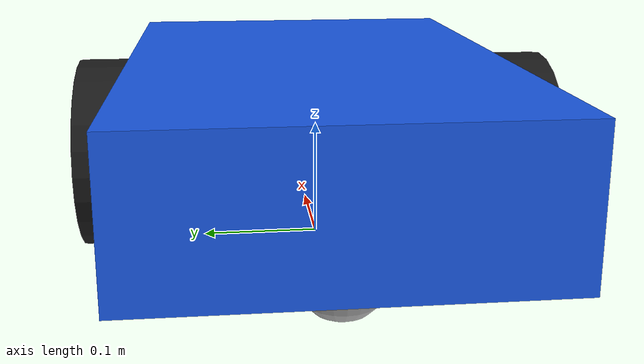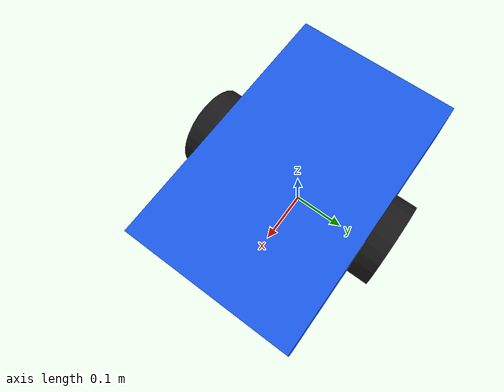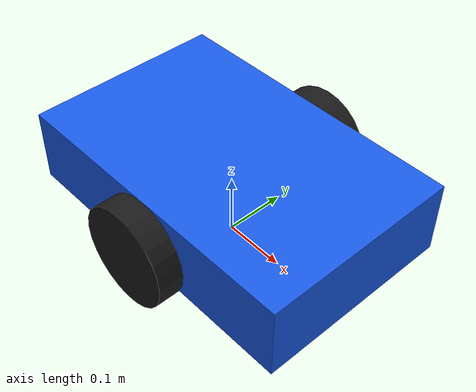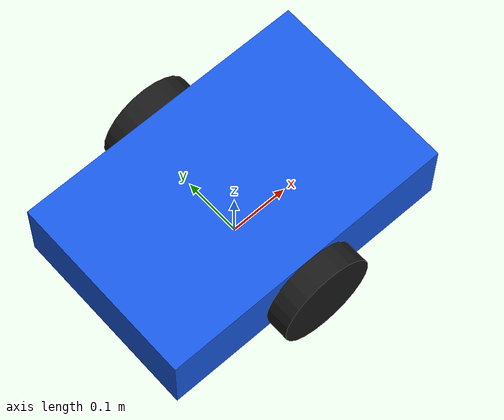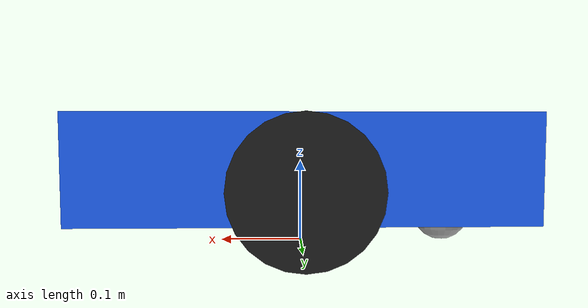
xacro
<?xml version="1.0"?>
<robot name="simple_diff_drive" xmlns:xacro="http://www.ros.org/wiki/xacro">
  <!--
    This is a small teaching model:
    - base_link is the main robot body
    - left_wheel and right_wheel are continuous wheel joints
    - caster_wheel is a small passive support wheel
  -->

  <xacro:property name="base_length" value="0.50"/>
  <xacro:property name="base_width" value="0.32"/>
  <xacro:property name="base_height" value="0.12"/>
  <xacro:property name="wheel_radius" value="0.08"/>
  <xacro:property name="wheel_width" value="0.04"/>
  <xacro:property name="caster_radius" value="0.035"/>

  <material name="blue">
    <color rgba="0.1 0.35 0.9 1.0"/>
  </material>

  <material name="dark_gray">
    <color rgba="0.1 0.1 0.1 1.0"/>
  </material>

  <material name="light_gray">
    <color rgba="0.7 0.7 0.7 1.0"/>
  </material>

  <link name="base_link">
    <visual>
      <origin xyz="0 0 0.10" rpy="0 0 0"/>
      <geometry>
        <box size="${base_length} ${base_width} ${base_height}"/>
      </geometry>
      <material name="blue"/>
    </visual>
    <collision>
      <origin xyz="0 0 0.10" rpy="0 0 0"/>
      <geometry>
        <box size="${base_length} ${base_width} ${base_height}"/>
      </geometry>
    </collision>
    <inertial>
      <origin xyz="0 0 0.10" rpy="0 0 0"/>
      <mass value="2.0"/>
      <inertia ixx="0.025" ixy="0.0" ixz="0.0" iyy="0.045" iyz="0.0" izz="0.060"/>
    </inertial>
  </link>

  <link name="left_wheel">
    <visual>
      <origin xyz="0 0 0" rpy="1.5708 0 0"/>
      <geometry>
        <cylinder radius="${wheel_radius}" length="${wheel_width}"/>
      </geometry>
      <material name="dark_gray"/>
    </visual>
    <collision>
      <origin xyz="0 0 0" rpy="1.5708 0 0"/>
      <geometry>
        <cylinder radius="${wheel_radius}" length="${wheel_width}"/>
      </geometry>
    </collision>
    <inertial>
      <mass value="0.2"/>
      <inertia ixx="0.0008" ixy="0.0" ixz="0.0" iyy="0.0008" iyz="0.0" izz="0.0005"/>
    </inertial>
  </link>

  <link name="right_wheel">
    <visual>
      <origin xyz="0 0 0" rpy="1.5708 0 0"/>
      <geometry>
        <cylinder radius="${wheel_radius}" length="${wheel_width}"/>
      </geometry>
      <material name="dark_gray"/>
    </visual>
    <collision>
      <origin xyz="0 0 0" rpy="1.5708 0 0"/>
      <geometry>
        <cylinder radius="${wheel_radius}" length="${wheel_width}"/>
      </geometry>
    </collision>
    <inertial>
      <mass value="0.2"/>
      <inertia ixx="0.0008" ixy="0.0" ixz="0.0" iyy="0.0008" iyz="0.0" izz="0.0005"/>
    </inertial>
  </link>

  <link name="caster_wheel">
    <visual>
      <origin xyz="0 0 0" rpy="0 0 0"/>
      <geometry>
        <sphere radius="${caster_radius}"/>
      </geometry>
      <material name="light_gray"/>
    </visual>
    <collision>
      <origin xyz="0 0 0" rpy="0 0 0"/>
      <geometry>
        <sphere radius="${caster_radius}"/>
      </geometry>
    </collision>
    <inertial>
      <mass value="0.05"/>
      <inertia ixx="0.00005" ixy="0.0" ixz="0.0" iyy="0.00005" iyz="0.0" izz="0.00005"/>
    </inertial>
  </link>

  <joint name="left_wheel_joint" type="continuous">
    <parent link="base_link"/>
    <child link="left_wheel"/>
    <origin xyz="0 0.18 0.08" rpy="0 0 0"/>
    <axis xyz="0 1 0"/>
  </joint>

  <joint name="right_wheel_joint" type="continuous">
    <parent link="base_link"/>
    <child link="right_wheel"/>
    <origin xyz="0 -0.18 0.08" rpy="0 0 0"/>
    <axis xyz="0 1 0"/>
  </joint>

  <joint name="caster_wheel_joint" type="fixed">
    <parent link="base_link"/>
    <child link="caster_wheel"/>
    <origin xyz="-0.18 0 0.035" rpy="0 0 0"/>
  </joint>
</robot>
